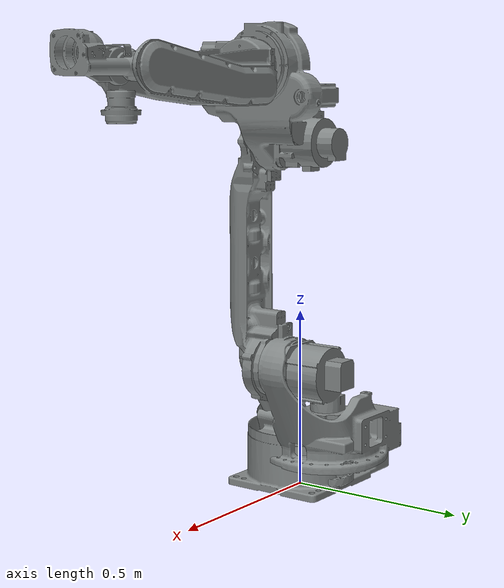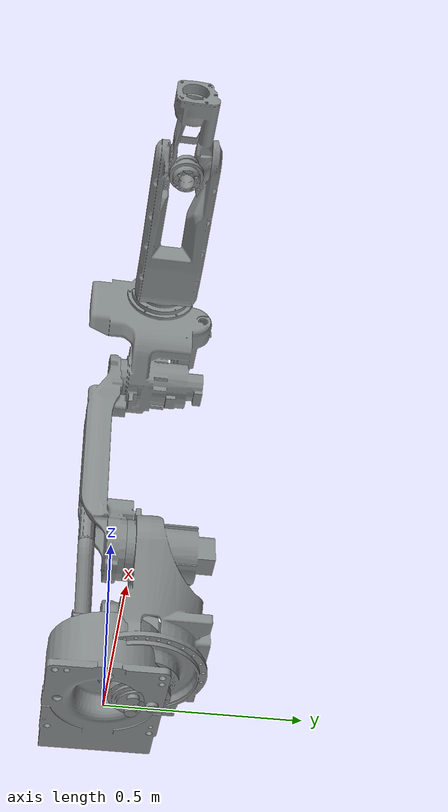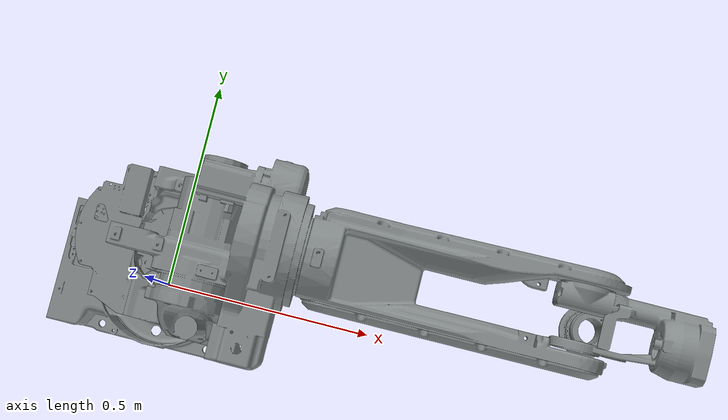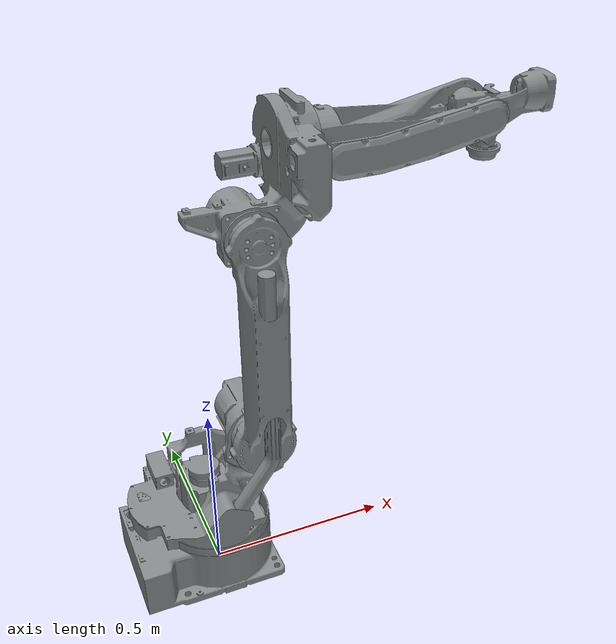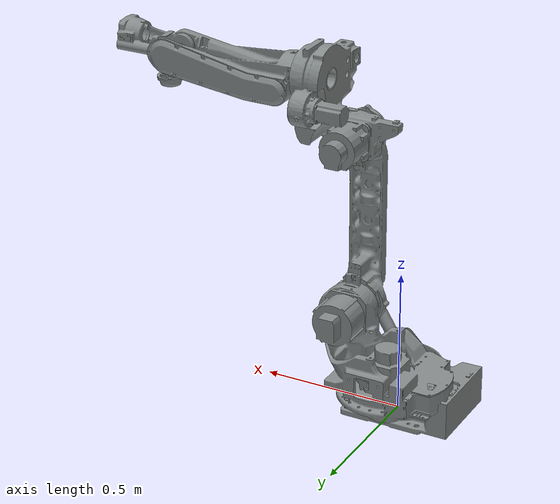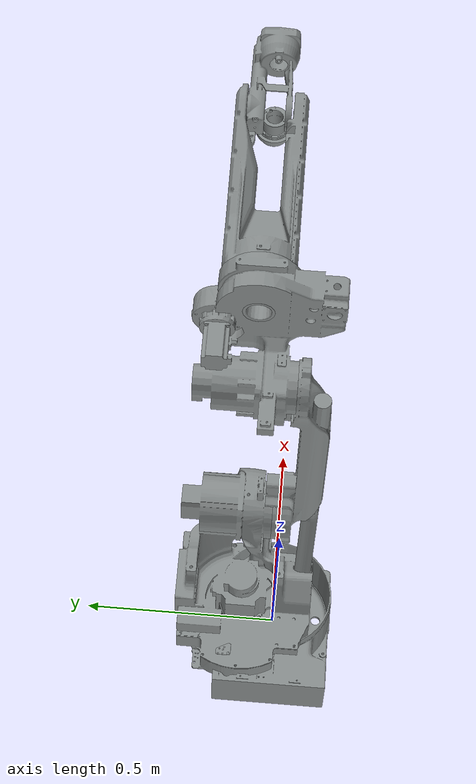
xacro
<?xml version="1.0"?>
<robot name="ma1400" xmlns:xacro="http://www.ros.org/wiki/xacro">
  <!-- Constants for robot dimensions -->
  <xacro:property name="M_PI" value="3.1415926535897931"/>
  <!-- Import all Gazebo-customization elements, including Gazebo colors -->
  <xacro:include filename="$(find ma1400_sim)/urdf/ma1400.gazebo.xacro" />
  <!-- Import trasnmission macro -->
  <xacro:include filename="$(find ma1400_sim)/urdf/ma1400.transmission.xacro"/>

  <!-- Parameters for each joint and link -->
  <!-- joint: joint_base = world -> base_link -->
  <property name="base_name"       value="base" />
  <property name="base_type"       value="revolute" />
  <property name="base_origin_xyz" value="0 0 0" />
  <property name="base_origin_rpy" value="0 ${-M_PI/2} 0" />
  <property name="base_parent"     value="world" />
  <property name="base_child"      value="base_link" />
  <property name="base_axis_xyz"   value="0 0 1" />
  <property name="base_lower"      value="0" />
  <property name="base_upper"      value="0" />
  <property name="base_effort"     value="0" />
  <property name="base_velocity"   value="0" />
  <property name="base_damping"    value="0.7" />

  <!-- link: base_link -->
  <property name="base_xyz"  value="0.0659 0.0031108 0.04815" />
  <property name="base_rpy"  value="0 0 0" />
  <property name="base_mass" value="22.072" />
  <property name="base_ixx"  value="0.50652" />
  <property name="base_ixy"  value="-0.0073335" />
  <property name="base_ixz"  value="-0.028252" />
  <property name="base_iyy"  value="0.36205" />
  <property name="base_iyz"  value="-0.010806" />
  <property name="base_izz"  value="0.24865" />

  <!-- joint: joint_s = base_link -> s_link -->
  <property name="s_name"       value="s" />
  <property name="s_type"       value="revolute" />
  <property name="s_origin_xyz" value="0 0.0875 0" />
  <property name="s_origin_rpy" value="0 0 0" />
  <property name="s_parent"     value="base_link" />
  <property name="s_child"      value="s_link" />
  <property name="s_axis_xyz"   value="1 0 0" />
  <property name="s_lower"      value="${-170*M_PI/180}" />
  <property name="s_upper"      value="${170*M_PI/180}" />
  <property name="s_effort"     value="0" />
  <property name="s_velocity"   value="${220*M_PI/180}" />
  <property name="s_damping"    value="0.7" />

  <!-- link: s_link -->
  <property name="s_xyz"  value="0.062654 -0.0075772 -0.0043747" />
  <property name="s_rpy"  value="0 0 0" />
  <property name="s_mass" value="22.072" />
  <property name="s_ixx"  value="0.50652" />
  <property name="s_ixy"  value="-0.0073335" />
  <property name="s_ixz"  value="-0.028252" />
  <property name="s_iyy"  value="0.36205" />
  <property name="s_iyz"  value="-0.010806" />
  <property name="s_izz"  value="0.24865" />

  <!-- joint: joint_l = s_link -> l_link -->
  <property name="l_name"       value="l" />
  <property name="l_type"       value="revolute" />
  <property name="l_origin_xyz" value="0.3705 -0.0655 -0.15" />
  <property name="l_origin_rpy" value="-9.0409E-17 0 -1.5708" />
  <property name="l_parent"     value="s_link" />
  <property name="l_child"      value="l_link" />
  <property name="l_axis_xyz"   value="-1 0 0" />
  <property name="l_lower"      value="${-M_PI/2}" />
  <property name="l_upper"      value="${170*M_PI/180}" />
  <property name="l_effort"     value="0" />
  <property name="l_velocity"   value="${220*M_PI/180}" />
  <property name="l_damping"    value="1.7" />

  <!-- link: l_link -->
  <property name="l_xyz"  value="0.069501 0.26438 -9.7345E-05" />
  <property name="l_rpy"  value="0 0 0" />
  <property name="l_mass" value="30.269" />
  <property name="l_ixx"  value="1.2747" />
  <property name="l_ixy"  value="-0.047351" />
  <property name="l_ixz"  value="-0.00033135" />
  <property name="l_iyy"  value="0.070602" />
  <property name="l_iyz"  value="0.00061639" />
  <property name="l_izz"  value="1.2616" />

  <!-- joint: joint_u = l_link -> u_link -->
  <property name="u_name"       value="u" />
  <property name="u_type"       value="revolute" />
  <property name="u_origin_xyz" value="0.0445 0.614 0" />
  <property name="u_origin_rpy" value="-9.0409E-17 0 3.1416" />
  <property name="u_parent"     value="l_link" />
  <property name="u_child"      value="u_link" />
  <property name="u_axis_xyz"   value="1 0 0" />
  <property name="u_lower"      value="${-190*M_PI/180}" />
  <property name="u_upper"      value="${175*M_PI/180}" />
  <property name="u_effort"     value="0" />
  <property name="u_velocity"   value="${220*M_PI/180}" />
  <property name="u_damping"    value="1.7" />

  <!-- link: u_link -->
  <property name="u_xyz"  value="0.10628 -0.068994 -0.050692" />
  <property name="u_rpy"  value="0 0 0" />
  <property name="u_mass" value="40.603" />
  <property name="u_ixx"  value="0.67103" />
  <property name="u_ixy"  value="-0.023573" />
  <property name="u_ixz"  value="-0.022912" />
  <property name="u_iyy"  value="0.50654" />
  <property name="u_iyz"  value="-0.20689" />
  <property name="u_izz"  value="0.68713" />

  <!-- joint: joint_r = u_link -> r_link -->
  <property name="r_name"       value="r" />
  <property name="r_type"       value="revolute" />
  <property name="r_origin_xyz" value="0.109 -0.2 -0.069" />
  <property name="r_origin_rpy" value="${M_PI/2} ${M_PI/2} 0" />
  <property name="r_parent"     value="u_link" />
  <property name="r_child"      value="r_link" />
  <property name="r_axis_xyz"   value="1 0 0" />
  <property name="r_lower"      value="${-150*M_PI/180}" />
  <property name="r_upper"      value="${150*M_PI/180}" />
  <property name="r_effort"     value="14" />
  <property name="r_velocity"   value="${185*M_PI/180}" />
  <property name="r_damping"    value="1.7" />

  <!-- link: r_link -->
  <property name="r_xyz"  value="0.2743 0.0044679 -0.016296" />
  <property name="r_rpy"  value="0 0 0" />
  <property name="r_mass" value="13.33" />
  <property name="r_ixx"  value="0.056428" />
  <property name="r_ixy"  value="-0.0016495" />
  <property name="r_ixz"  value="0.0069738" />
  <property name="r_iyy"  value="0.37608" />
  <property name="r_iyz"  value="0.00075742" />
  <property name="r_izz"  value="0.38768" />

  <!-- joint: joint_b = r_link -> b_link -->
  <property name="b_name"       value="b" />
  <property name="b_type"       value="revolute" />
  <property name="b_origin_xyz" value="0.571 0.07 0" />
  <property name="b_origin_rpy" value="${-M_PI/2} 0 ${-M_PI/2}" />
  <property name="b_parent"     value="r_link" />
  <property name="b_child"      value="b_link" />
  <property name="b_axis_xyz"   value="-1 0 0" />
  <property name="b_lower"      value="${-45*M_PI/180}" />
  <property name="b_upper"      value="${180*M_PI/180}" />
  <property name="b_effort"     value="14" />
  <property name="b_velocity"   value="${164*M_PI/180}" />
  <property name="b_damping"    value="1.7" />

  <!-- link: b_link -->
  <property name="b_xyz"  value="0.056214 0.092191 0.012761" />
  <property name="b_rpy"  value="0 0 0" />
  <property name="b_mass" value="4.0209" />
  <property name="b_ixx"  value="0.024141" />
  <property name="b_ixy"  value="-0.0015461" />
  <property name="b_ixz"  value="-0.00057354" />
  <property name="b_iyy"  value="0.0086318" />
  <property name="b_iyz"  value="-0.0030317" />
  <property name="b_izz"  value="0.026048" />

  <!-- joint: joint_t = b_link -> t_link -->
  <property name="t_name"       value="t" />
  <property name="t_type"       value="revolute" />
  <property name="t_origin_xyz" value="0.07 0.1265 0.03" />
  <property name="t_origin_rpy" value="0 0 ${M_PI/2}" />
  <property name="t_parent"     value="b_link" />
  <property name="t_child"      value="t_link" />
  <property name="t_axis_xyz"   value="-1 0 0" />
  <property name="t_lower"      value="${-200*M_PI/180}" />
  <property name="t_upper"      value="${200*M_PI/180}" />
  <property name="t_effort"     value="0.98" />
  <property name="t_velocity"   value="${610*M_PI/180}" />
  <property name="t_damping"    value="0.7" />

  <!-- link: t_link -->
  <property name="t_xyz"  value="0.041051 -1.0193E-05 -1.6479E-05" />
  <property name="t_rpy"  value="0 0 0" />
  <property name="t_mass" value="1.3027" />
  <property name="t_ixx"  value="0.0012142" />
  <property name="t_ixy"  value="-5.0796E-07" />
  <property name="t_ixz"  value="1.2468E-06" />
  <property name="t_iyy"  value="0.0011156" />
  <property name="t_iyz"  value="2.6778E-06" />
  <property name="t_izz"  value="0.0011096" />

  <!-- Macro which defines a joint, link, transmission, gazebo parameters -->
  <xacro:macro name="ma1400_link" params="name xyz rpy mass ixx ixy ixz iyy iyz izz type origin_xyz origin_rpy parent child axis_xyz lower upper effort velocity damping">
    <joint name="joint_${name}" type="${type}">
      <origin xyz="${origin_xyz}" rpy="${origin_rpy}" />
      <parent link="${parent}" />
      <child link="${child}" />
      <axis xyz="${axis_xyz}" />
      <limit lower="${lower}" upper="${upper}"
             effort="${effort}" velocity="${velocity}" />
      <dynamics damping="${damping}" />
    </joint>
    <link name="${name}_link">
      <inertial>
        <origin xyz="${xyz}" rpy="${rpy}" />
        <mass value="${mass}" />
        <inertia ixx="${ixx}" ixy="${ixy}" ixz="${ixz}"
                 iyy="${iyy}" iyz="${iyz}" izz="${izz}" />
      </inertial>
      <visual>
        <origin xyz="0 0 0" rpy="0 0 0" />
        <geometry>
          <mesh filename="package://ma1400_sim/meshes/ma1400/${name}_link.stl" />
        </geometry>
        <material name="Cast Carbon Steal">
          <color rgba="0.52941 0.54902 0.54902 1" />
        </material>
      </visual>
      <collision>
        <origin xyz="0 0 0" rpy="0 0 0" />
        <geometry>
          <mesh filename="package://ma1400_sim/meshes/ma1400/${name}_link.stl" />
        </geometry>
      </collision>
    </link>
    <xacro:ma1400_transmission name="${name}" />
    <xacro:ma1400_gazebo name="${name}" />
  </xacro:macro>
  <!-- Macro which defines a joint, link, transmission, gazebo parameters -->

  <!-- Define all the joints and links -->
  <link name="world" />

  <!-- base_link -->
  <xacro:ma1400_link name="${base_name}" xyz="${base_xyz}" rpy="${base_rpy}"
                     mass="${base_mass}"
                     ixx="${base_ixx}" ixy="${base_ixy}" ixz="${base_ixz}"
                     iyy="${base_iyy}" iyz="${base_iyz}" izz="${base_izz}"
                     type="${base_type}"
                     origin_xyz="${base_origin_xyz}"
                     origin_rpy="${base_origin_rpy}"
                     parent="${base_parent}"
                     child="${base_child}"
                     axis_xyz="${base_axis_xyz}"
                     lower="${base_lower}"
                     upper="${base_upper}"
                     effort="${base_effort}"
                     velocity="${base_velocity}"
                     damping="${base_damping}" />

  <!-- s_link -->
  <xacro:ma1400_link name="${s_name}" xyz="${s_xyz}" rpy="${s_rpy}"
                     mass="${s_mass}"
                     ixx="${s_ixx}" ixy="${s_ixy}" ixz="${s_ixz}"
                     iyy="${s_iyy}" iyz="${s_iyz}" izz="${s_izz}"
                     type="${s_type}"
                     origin_xyz="${s_origin_xyz}"
                     origin_rpy="${s_origin_rpy}"
                     parent="${s_parent}"
                     child="${s_child}"
                     axis_xyz="${s_axis_xyz}"
                     lower="${s_lower}"
                     upper="${s_upper}"
                     effort="${s_effort}"
                     velocity="${s_velocity}"
                     damping="${s_damping}" />

  <!-- l_link -->
  <xacro:ma1400_link name="${l_name}" xyz="${l_xyz}" rpy="${l_rpy}"
                     mass="${l_mass}"
                     ixx="${l_ixx}" ixy="${l_ixy}" ixz="${l_ixz}"
                     iyy="${l_iyy}" iyz="${l_iyz}" izz="${l_izz}"
                     type="${l_type}"
                     origin_xyz="${l_origin_xyz}"
                     origin_rpy="${l_origin_rpy}"
                     parent="${l_parent}"
                     child="${l_child}"
                     axis_xyz="${l_axis_xyz}"
                     lower="${l_lower}"
                     upper="${l_upper}"
                     effort="${l_effort}"
                     velocity="${l_velocity}"
                     damping="${l_damping}" />

  <!-- u_link -->
  <xacro:ma1400_link name="${u_name}" xyz="${u_xyz}" rpy="${u_rpy}"
                     mass="${u_mass}"
                     ixx="${u_ixx}" ixy="${u_ixy}" ixz="${u_ixz}"
                     iyy="${u_iyy}" iyz="${u_iyz}" izz="${u_izz}"
                     type="${u_type}"
                     origin_xyz="${u_origin_xyz}"
                     origin_rpy="${u_origin_rpy}"
                     parent="${u_parent}"
                     child="${u_child}"
                     axis_xyz="${u_axis_xyz}"
                     lower="${u_lower}"
                     upper="${u_upper}"
                     effort="${u_effort}"
                     velocity="${u_velocity}"
                     damping="${u_damping}"/>

  <!-- r_link -->
  <xacro:ma1400_link name="${r_name}" xyz="${r_xyz}" rpy="${r_rpy}"
                     mass="${r_mass}"
                     ixx="${r_ixx}" ixy="${r_ixy}" ixz="${r_ixz}"
                     iyy="${r_iyy}" iyz="${r_iyz}" izz="${r_izz}"
                     type="${r_type}"
                     origin_xyz="${r_origin_xyz}"
                     origin_rpy="${r_origin_rpy}"
                     parent="${r_parent}"
                     child="${r_child}"
                     axis_xyz="${r_axis_xyz}"
                     lower="${r_lower}"
                     upper="${r_upper}"
                     effort="${r_effort}"
                     velocity="${r_velocity}"
                     damping="${r_damping}"/>

  <!-- b_link -->
  <xacro:ma1400_link name="${b_name}" xyz="${b_xyz}" rpy="${b_rpy}"
                     mass="${b_mass}"
                     ixx="${b_ixx}" ixy="${b_ixy}" ixz="${b_ixz}"
                     iyy="${b_iyy}" iyz="${b_iyz}" izz="${b_izz}"
                     type="${b_type}"
                     origin_xyz="${b_origin_xyz}"
                     origin_rpy="${b_origin_rpy}"
                     parent="${b_parent}"
                     child="${b_child}"
                     axis_xyz="${b_axis_xyz}"
                     lower="${b_lower}"
                     upper="${b_upper}"
                     effort="${b_effort}"
                     velocity="${b_velocity}"
                     damping="${b_damping}"/>

  <!-- t_link -->
  <xacro:ma1400_link name="${t_name}" xyz="${t_xyz}" rpy="${t_rpy}"
                     mass="${t_mass}"
                     ixx="${t_ixx}" ixy="${t_ixy}" ixz="${t_ixz}"
                     iyy="${t_iyy}" iyz="${t_iyz}" izz="${t_izz}"
                     type="${t_type}"
                     origin_xyz="${t_origin_xyz}"
                     origin_rpy="${t_origin_rpy}"
                     parent="${t_parent}"
                     child="${t_child}"
                     axis_xyz="${t_axis_xyz}"
                     lower="${t_lower}"
                     upper="${t_upper}"
                     effort="${t_effort}"
                     velocity="${t_velocity}"
                     damping="${t_damping}" />

</robot>
